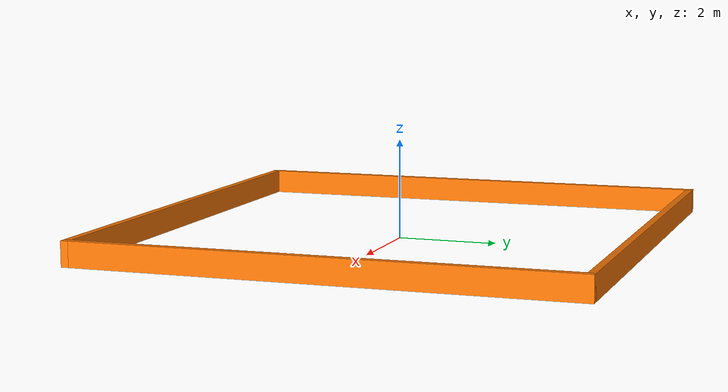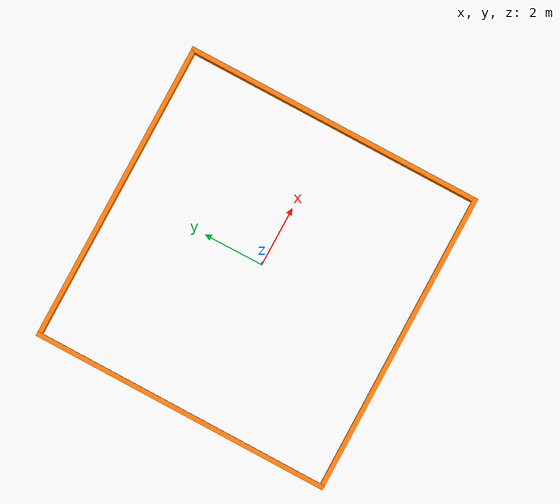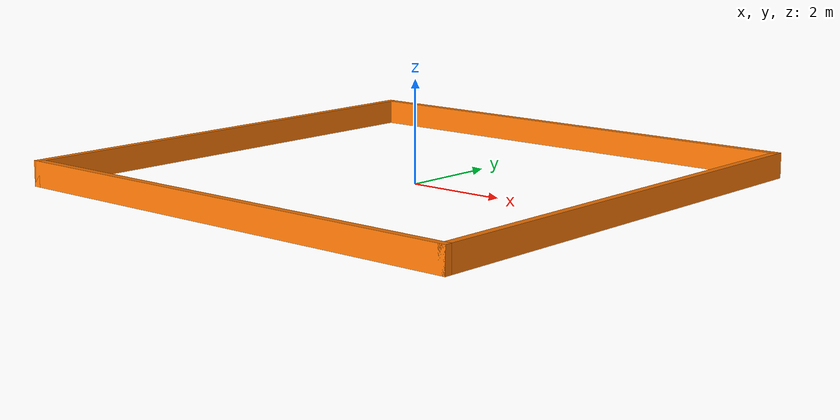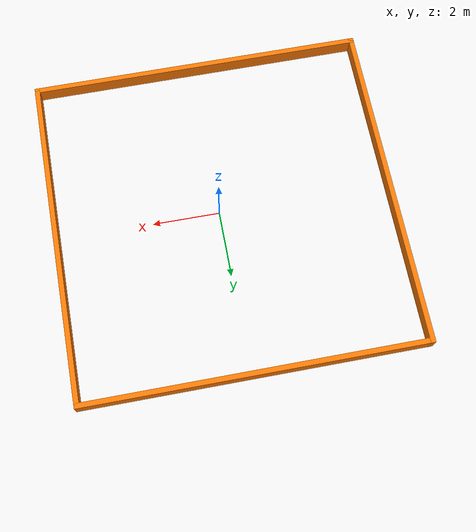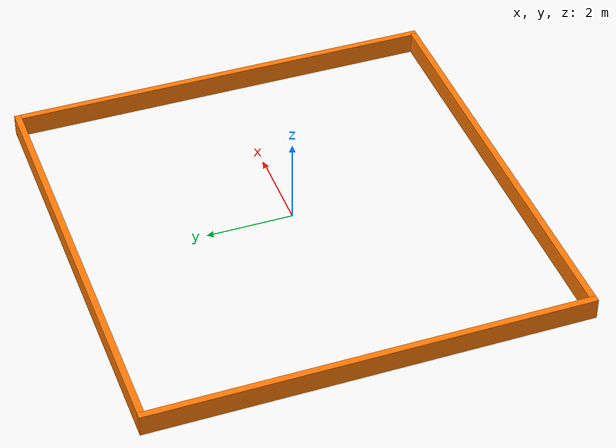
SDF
<?xml version='1.0'?>
<sdf version='1.7'>
  <model name='walls'>
    <pose>-0.15 0.075 0 0 -0 0</pose>
    <link name='Wall_10'>
      <collision name='Wall_10_Collision'>
        <geometry>
          <box>
            <size>10 0.15 0.5</size>
          </box>
        </geometry>
        <pose>0 0 0.25 0 -0 0</pose>
      </collision>
      <visual name='Wall_10_Visual'>
        <pose>0 0 0.25 0 -0 0</pose>
        <geometry>
          <box>
            <size>10 0.15 0.5</size>
          </box>
        </geometry>
        <material>
          <script>
            <uri>file://media/materials/scripts/gazebo.material</uri>
            <name>Gazebo/Grey</name>
          </script>
          <ambient>0.996078 0.47451 0.0196078 1</ambient>
        </material>
        <meta>
          <layer>0</layer>
        </meta>
      </visual>
      <pose>-5 0 0 0 -0 -1.5708</pose>
    </link>
    <link name='Wall_12'>
      <collision name='Wall_12_Collision'>
        <geometry>
          <box>
            <size>10.15 0.15 0.5</size>
          </box>
        </geometry>
        <pose>0 0 0.25 0 -0 0</pose>
      </collision>
      <visual name='Wall_12_Visual'>
        <pose>0 0 0.25 0 -0 0</pose>
        <geometry>
          <box>
            <size>10.15 0.15 0.5</size>
          </box>
        </geometry>
        <material>
          <script>
            <uri>file://media/materials/scripts/gazebo.material</uri>
            <name>Gazebo/Grey</name>
          </script>
          <ambient>0.996078 0.47451 0.0196078 1</ambient>
        </material>
        <meta>
          <layer>0</layer>
        </meta>
      </visual>
      <pose>0 -4.925 0 0 -0 0</pose>
    </link>
    <link name='Wall_14'>
      <collision name='Wall_14_Collision'>
        <geometry>
          <box>
            <size>10 0.15 0.5</size>
          </box>
        </geometry>
        <pose>0 0 0.25 0 -0 0</pose>
      </collision>
      <visual name='Wall_14_Visual'>
        <pose>0 0 0.25 0 -0 0</pose>
        <geometry>
          <box>
            <size>10 0.15 0.5</size>
          </box>
        </geometry>
        <material>
          <script>
            <uri>file://media/materials/scripts/gazebo.material</uri>
            <name>Gazebo/Grey</name>
          </script>
          <ambient>0.996078 0.47451 0.0196078 1</ambient>
        </material>
        <meta>
          <layer>0</layer>
        </meta>
      </visual>
      <pose>5 0 0 0 -0 -1.5708</pose>
    </link>
    <link name='Wall_7'>
      <collision name='Wall_7_Collision'>
        <geometry>
          <box>
            <size>10 0.15 0.5</size>
          </box>
        </geometry>
        <pose>0 0 0.25 0 -0 0</pose>
      </collision>
      <visual name='Wall_7_Visual'>
        <pose>0 0 0.25 0 -0 0</pose>
        <geometry>
          <box>
            <size>10 0.15 0.5</size>
          </box>
        </geometry>
        <material>
          <script>
            <uri>file://media/materials/scripts/gazebo.material</uri>
            <name>Gazebo/Grey</name>
          </script>
          <ambient>0.996078 0.47451 0.0196078 1</ambient>
        </material>
        <meta>
          <layer>0</layer>
        </meta>
      </visual>
      <pose>0.075 4.925 0 0 -0 0</pose>
    </link>
    <static>1</static>
  </model>
</sdf>
